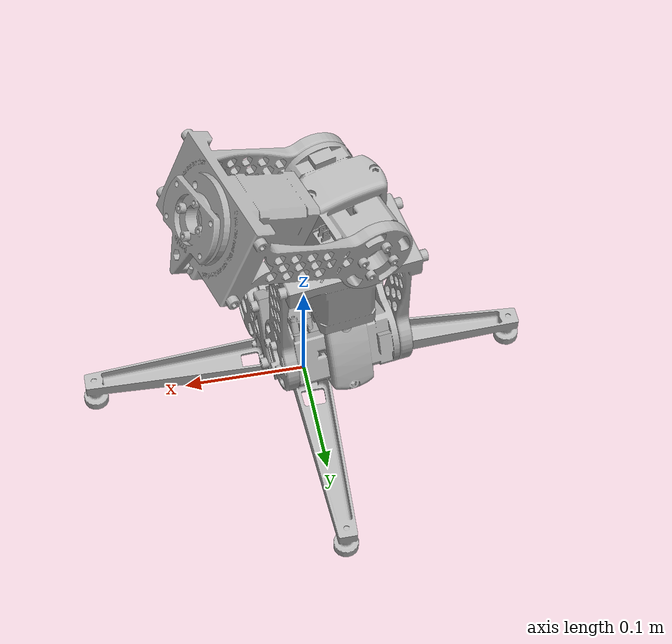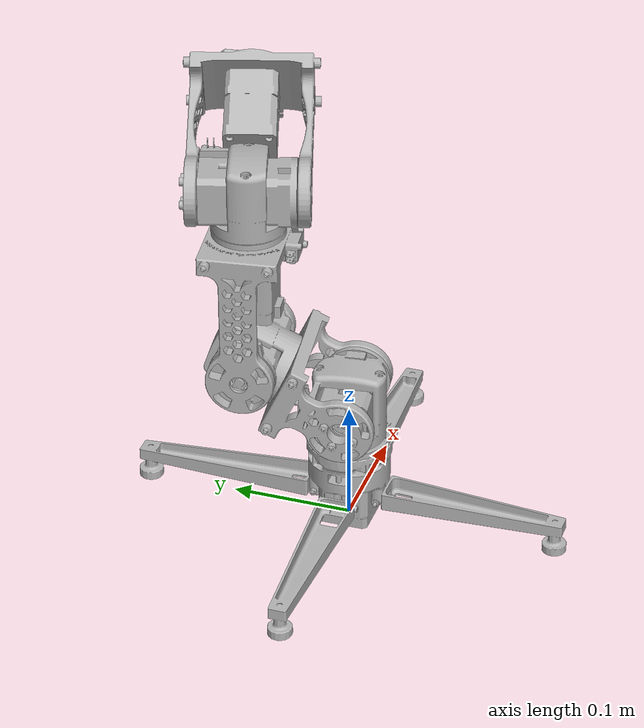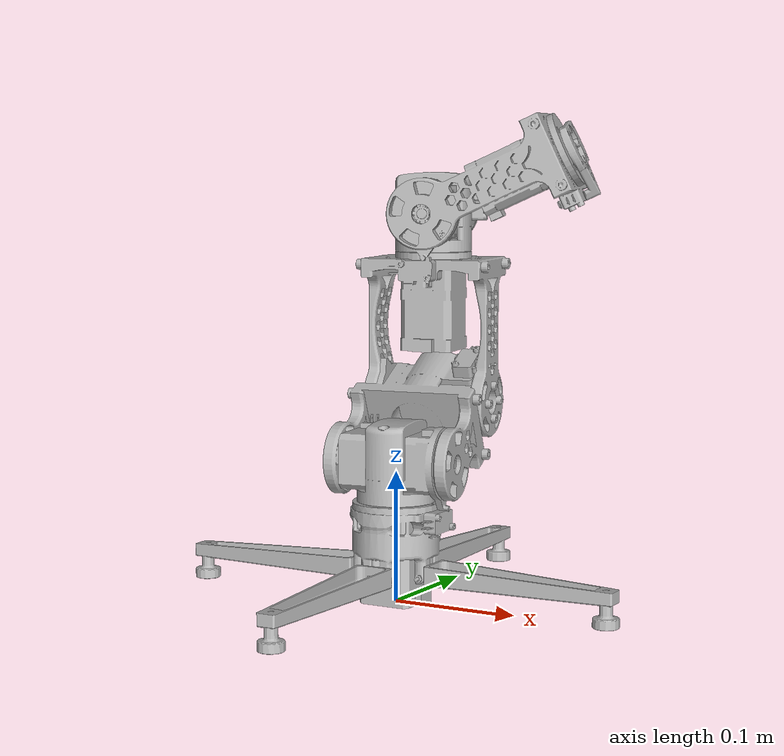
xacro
<?xml version="1.0" ?>
<robot name="proto" xmlns:xacro="http://www.ros.org/wiki/xacro">

<xacro:include filename="$(find proto_description)/urdf/materials.xacro" />
<xacro:include filename="$(find proto_description)/urdf/proto.trans" />
<xacro:include filename="$(find proto_description)/urdf/proto.gazebo" />
<link name="base_link">
  <inertial>
    <origin rpy="0 0 0" xyz="0.0007396603431815715 -1.2109763603965092e-05 0.03660197662963566"/>
    <mass value="0.2761464007003995"/>
    <inertia ixx="0.000757" ixy="0.0" ixz="-4e-06" iyy="0.000761" iyz="0.0" izz="0.001272"/>
  </inertial>
  <visual>
    <origin rpy="0 0 0" xyz="0 0 0"/>
    <geometry>
      <mesh filename="package://proto_description/meshes/base_link.stl" scale="0.001 0.001 0.001"/>
    </geometry>
    <material name="silver"/>
  </visual>
  <collision>
    <origin rpy="0 0 0" xyz="0 0 0"/>
    <geometry>
      <mesh filename="package://proto_description/meshes/base_link.stl" scale="0.001 0.001 0.001"/>
    </geometry>
  </collision>
</link>

<link name="Shoulder_link_v1_1">
  <inertial>
    <origin rpy="0 0 0" xyz="0.0011476357530529548 0.0013257306166784657 0.036700381128999024"/>
    <mass value="0.19813823002340522"/>
    <inertia ixx="0.0001" ixy="2e-06" ixz="1e-06" iyy="0.000138" iyz="-2e-06" izz="0.00013"/>
  </inertial>
  <visual>
    <origin rpy="0 0 0" xyz="-0.0 0.0 -0.07025"/>
    <geometry>
      <mesh filename="package://proto_description/meshes/Shoulder_link_v1_1.stl" scale="0.001 0.001 0.001"/>
    </geometry>
    <material name="silver"/>
  </visual>
  <collision>
    <origin rpy="0 0 0" xyz="-0.0 0.0 -0.07025"/>
    <geometry>
      <mesh filename="package://proto_description/meshes/Shoulder_link_v1_1.stl" scale="0.001 0.001 0.001"/>
    </geometry>
  </collision>
</link>

<link name="Short_link_v1_1">
  <inertial>
    <origin rpy="0 0 0" xyz="0.0258118102689577 0.06734796603991125 0.030359927946473478"/>
    <mass value="0.2810513090866386"/>
    <inertia ixx="0.000386" ixy="2e-06" ixz="4e-06" iyy="0.000345" iyz="-9.4e-05" izz="0.000487"/>
  </inertial>
  <visual>
    <origin rpy="0 0 0" xyz="0.035897 0.005045 -0.1083"/>
    <geometry>
      <mesh filename="package://proto_description/meshes/Short_link_v1_1.stl" scale="0.001 0.001 0.001"/>
    </geometry>
    <material name="silver"/>
  </visual>
  <collision>
    <origin rpy="0 0 0" xyz="0.035897 0.005045 -0.1083"/>
    <geometry>
      <mesh filename="package://proto_description/meshes/Short_link_v1_1.stl" scale="0.001 0.001 0.001"/>
    </geometry>
  </collision>
</link>

<link name="Long_link_v1_1">
  <inertial>
    <origin rpy="0 0 0" xyz="0.04617094632274027 0.00544238962844841 0.0715089075148111"/>
    <mass value="0.2311934009151251"/>
    <inertia ixx="0.00038" ixy="-1.8e-05" ixz="1e-05" iyy="0.000507" iyz="8e-06" izz="0.000242"/>
  </inertial>
  <visual>
    <origin rpy="0 0 0" xyz="0.056505 -0.07333 -0.145829"/>
    <geometry>
      <mesh filename="package://proto_description/meshes/Long_link_v1_1.stl" scale="0.001 0.001 0.001"/>
    </geometry>
    <material name="silver"/>
  </visual>
  <collision>
    <origin rpy="0 0 0" xyz="0.056505 -0.07333 -0.145829"/>
    <geometry>
      <mesh filename="package://proto_description/meshes/Long_link_v1_1.stl" scale="0.001 0.001 0.001"/>
    </geometry>
  </collision>
</link>

<link name="Shoulder_link_v1__1__1">
  <inertial>
    <origin rpy="0 0 0" xyz="0.0014892689929757522 -0.0009262121111986016 0.03669988277157421"/>
    <mass value="0.19813823002340522"/>
    <inertia ixx="0.000138" ixy="4e-06" ixz="-2e-06" iyy="0.0001" iyz="-1e-06" izz="0.00013"/>
  </inertial>
  <visual>
    <origin rpy="0 0 0" xyz="0.011201 -0.079697 -0.256079"/>
    <geometry>
      <mesh filename="package://proto_description/meshes/Shoulder_link_v1__1__1.stl" scale="0.001 0.001 0.001"/>
    </geometry>
    <material name="silver"/>
  </visual>
  <collision>
    <origin rpy="0 0 0" xyz="0.011201 -0.079697 -0.256079"/>
    <geometry>
      <mesh filename="package://proto_description/meshes/Shoulder_link_v1__1__1.stl" scale="0.001 0.001 0.001"/>
    </geometry>
  </collision>
</link>

<link name="Long_link_v1__1__1">
  <inertial>
    <origin rpy="0 0 0" xyz="0.04880754986945039 0.06352496495431187 0.029281632440641747"/>
    <mass value="0.2311934009151251"/>
    <inertia ixx="0.000287" ixy="-1.8e-05" ixz="-9.5e-05" iyy="0.000375" iyz="-2.5e-05" izz="0.000466"/>
  </inertial>
  <visual>
    <origin rpy="0 0 0" xyz="-0.002248 -0.035707 -0.294129"/>
    <geometry>
      <mesh filename="package://proto_description/meshes/Long_link_v1__1__1.stl" scale="0.001 0.001 0.001"/>
    </geometry>
    <material name="silver"/>
  </visual>
  <collision>
    <origin rpy="0 0 0" xyz="-0.002248 -0.035707 -0.294129"/>
    <geometry>
      <mesh filename="package://proto_description/meshes/Long_link_v1__1__1.stl" scale="0.001 0.001 0.001"/>
    </geometry>
  </collision>
</link>

<link name="Plate_link_v1_1">
  <inertial>
    <origin rpy="0 0 0" xyz="0.00901400403018704 0.003393472892842142 -0.00031020971946160714"/>
    <mass value="0.014389707710093135"/>
    <inertia ixx="5e-06" ixy="1e-06" ixz="1e-06" iyy="3e-06" iyz="0.0" izz="4e-06"/>
  </inertial>
  <visual>
    <origin rpy="0 0 0" xyz="-0.084427 -0.108672 -0.340722"/>
    <geometry>
      <mesh filename="package://proto_description/meshes/Plate_link_v1_1.stl" scale="0.001 0.001 0.001"/>
    </geometry>
    <material name="silver"/>
  </visual>
  <collision>
    <origin rpy="0 0 0" xyz="-0.084427 -0.108672 -0.340722"/>
    <geometry>
      <mesh filename="package://proto_description/meshes/Plate_link_v1_1.stl" scale="0.001 0.001 0.001"/>
    </geometry>
  </collision>
</link>

<joint name="Rev1" type="continuous">
  <origin rpy="0 0 0" xyz="0.0 0.0 0.07025"/>
  <parent link="base_link"/>
  <child link="Shoulder_link_v1_1"/>
  <axis xyz="0.0 0.0 1.0"/>
</joint>

<joint name="Rev2" type="continuous">
  <origin rpy="0 0 0" xyz="-0.035897 -0.005045 0.03805"/>
  <parent link="Shoulder_link_v1_1"/>
  <child link="Short_link_v1_1"/>
  <axis xyz="-0.990268 -0.139173 0.0"/>
</joint>

<joint name="Rev3" type="continuous">
  <origin rpy="0 0 0" xyz="-0.020608 0.078375 0.037529"/>
  <parent link="Short_link_v1_1"/>
  <child link="Long_link_v1_1"/>
  <axis xyz="0.990268 0.139173 -0.0"/>
</joint>

<joint name="Rev4" type="continuous">
  <origin rpy="0 0 0" xyz="0.045304 0.006367 0.11025"/>
  <parent link="Long_link_v1_1"/>
  <child link="Shoulder_link_v1__1__1"/>
  <axis xyz="0.0 -0.0 1.0"/>
</joint>

<joint name="Rev5" type="continuous">
  <origin rpy="0 0 0" xyz="0.013449 -0.04399 0.03805"/>
  <parent link="Shoulder_link_v1__1__1"/>
  <child link="Long_link_v1__1__1"/>
  <axis xyz="-0.292372 0.956305 0.0"/>
</joint>

<joint name="Rev6" type="continuous">
  <origin rpy="0 0 0" xyz="0.082179 0.072965 0.046593"/>
  <parent link="Long_link_v1__1__1"/>
  <child link="Plate_link_v1_1"/>
  <axis xyz="0.866706 0.264979 0.422618"/>
</joint>

</robot>

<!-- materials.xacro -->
<robot name="Proto" xmlns:xacro="http://www.ros.org/wiki/xacro" >

<material name="silver">
  <color rgba="0.700 0.700 0.700 1.000"/>
</material>

</robot>

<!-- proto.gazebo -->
<robot name="proto" xmlns:xacro="http://www.ros.org/wiki/xacro" >

<xacro:property name="body_color" value="Gazebo/Silver" />

<gazebo>
  <plugin filename="libgazebo_ros_control.so" name="control"/>
</gazebo>
<gazebo reference="base_link">
  <material>${body_color}</material>
  <mu1>0.2</mu1>
  <mu2>0.2</mu2>
  <selfCollide>true</selfCollide>
  <gravity>true</gravity>
</gazebo>

<gazebo reference="Shoulder_link_v1_1">
  <material>${body_color}</material>
  <mu1>0.2</mu1>
  <mu2>0.2</mu2>
  <selfCollide>true</selfCollide>
</gazebo>

<gazebo reference="Short_link_v1_1">
  <material>${body_color}</material>
  <mu1>0.2</mu1>
  <mu2>0.2</mu2>
  <selfCollide>true</selfCollide>
</gazebo>

<gazebo reference="Long_link_v1_1">
  <material>${body_color}</material>
  <mu1>0.2</mu1>
  <mu2>0.2</mu2>
  <selfCollide>true</selfCollide>
</gazebo>

<gazebo reference="Shoulder_link_v1__1__1">
  <material>${body_color}</material>
  <mu1>0.2</mu1>
  <mu2>0.2</mu2>
  <selfCollide>true</selfCollide>
</gazebo>

<gazebo reference="Long_link_v1__1__1">
  <material>${body_color}</material>
  <mu1>0.2</mu1>
  <mu2>0.2</mu2>
  <selfCollide>true</selfCollide>
</gazebo>

<gazebo reference="Plate_link_v1_1">
  <material>${body_color}</material>
  <mu1>0.2</mu1>
  <mu2>0.2</mu2>
  <selfCollide>true</selfCollide>
</gazebo>

</robot>
